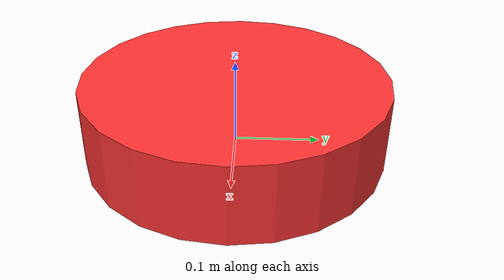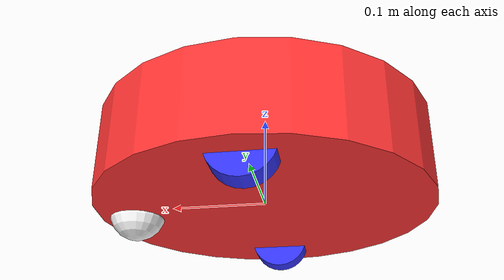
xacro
<?xml version="1.0"?>
<robot xmlns:xacro="http://www.ros.org/wiki/xacro"  name="robot">

    <xacro:arg name="use_ros2_control" default="true"/>
    <xacro:arg name="sim_mode" default="false"/>

    <xacro:include filename="robot_core.xacro" />

    <xacro:if value="$(arg use_ros2_control)">
        <xacro:include filename="ros2_control.xacro" />
    </xacro:if>
    <xacro:unless value="$(arg use_ros2_control)">
        <xacro:include filename="gazebo_control.xacro" />
    </xacro:unless>

</robot>

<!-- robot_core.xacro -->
<robot xmlns:xacro="http://www.ros.org/wiki/xacro" >
    <xacro:include filename="inertial_macros.xacro"/>

    <!-- Roomba-style robot properties -->
    <xacro:property name="chassis_radius" value="0.178"/> <!-- Approx 35.6cm diameter -->
    <xacro:property name="chassis_height" value="0.092"/>
    <xacro:property name="chassis_mass" value="3.5"/>
    <xacro:property name="wheel_radius" value="0.033"/>
    <xacro:property name="wheel_thickness" value="0.026"/>
    <xacro:property name="wheel_mass" value="0.05"/>
    <xacro:property name="wheel_offset_x" value="0.170"/> <!-- Adjusted for new chassis -->
    <xacro:property name="wheel_offset_y" value="0.135"/> <!-- Adjusted for new chassis -->
    <xacro:property name="wheel_offset_z" value="0.01"/>
    <xacro:property name="caster_wheel_radius" value="0.03"/>
    <xacro:property name="caster_wheel_mass" value="0.25"/>
    <xacro:property name="caster_wheel_offset_x" value="0.14"/> <!-- Adjusted for new chassis -->
    <xacro:property name="caster_wheel_offset_z" value="${wheel_offset_z - wheel_radius + caster_wheel_radius}"/>
    <material name="white">
        <color rgba="1 1 1 1" />
    </material>
    <material name="orange">
        <color rgba="1 0.3 0.1 1"/>
    </material>
    <material name="blue">
        <color rgba="0.2 0.2 1 1"/>
    </material>
    <material name="black">
        <color rgba="0 0 0 1"/>
    </material>
    <material name="grey">
        <color rgba="0.4 0.4 0.4 1"/>
    </material>
    <material name="red">
        <color rgba="1 0.2 0.2 1"/>
    </material>

    <!-- BASE LINK -->
    <link name="base_link">
    </link>

    <!-- BASE_FOOTPRINT LINK -->
    <joint name="base_footprint_joint" type="fixed">
        <parent link="base_link"/>
        <child link="base_footprint"/>
        <origin xyz="0 0 0" rpy="0 0 0"/>
    </joint>
    <link name="base_footprint">
    </link>

    <!-- CHASSIS LINK -->
    <joint name="chassis_joint" type="fixed">
        <parent link="base_link"/>
        <child link="chassis"/>
        <origin xyz="0 0 ${-wheel_offset_z}"/>
    </joint>
    <link name="chassis">
        <visual>
            <origin xyz="0 0 ${chassis_height/2}"/>
            <geometry>
                <cylinder radius="${chassis_radius}" length="${chassis_height}"/>
            </geometry>
            <material name="red"/>
        </visual>
        <collision>
            <origin xyz="0 0 ${chassis_height/2}"/>
            <geometry>
                <cylinder radius="${chassis_radius}" length="${chassis_height}"/>
            </geometry>
        </collision>
        <xacro:inertial_cylinder mass="${chassis_mass}" length="${chassis_height}" radius="${chassis_radius}">
            <origin xyz="0 0 ${chassis_height/2}" rpy="0 0 0"/>
        </xacro:inertial_cylinder>
    </link>
    <gazebo reference="chassis">
        <material>Gazebo/Red</material>
    </gazebo>
    <!-- LEFT WHEEL LINK -->
    <joint name="left_wheel_joint" type="continuous">
        <parent link="base_link"/>
        <child link="left_wheel"/>
        <origin xyz="0 ${wheel_offset_y} 0" rpy="-${pi/2} 0 0" />
        <axis xyz="0 0 1"/>
    </joint>
    <link name="left_wheel">
        <visual>
            <geometry>
                <cylinder radius="${wheel_radius}" length="${wheel_thickness}"/>
            </geometry>
            <material name="blue"/>
        </visual>
        <collision>
            <geometry>
                <cylinder radius="${wheel_radius}" length="${wheel_thickness}"/>
            </geometry>
        </collision>
        <xacro:inertial_cylinder mass="${wheel_mass}" length="${wheel_thickness}" radius="${wheel_radius}">
            <origin xyz="0 0 0" rpy="0 0 0"/>
        </xacro:inertial_cylinder>
    </link>
    <gazebo reference="left_wheel">
        <material>Gazebo/Blue</material>
    </gazebo>

    <!-- RIGHT WHEEL LINK -->
    <joint name="right_wheel_joint" type="continuous">
        <parent link="base_link"/>
        <child link="right_wheel"/>
        <origin xyz="0 ${-wheel_offset_y} 0" rpy="${pi/2} 0 0" />
        <axis xyz="0 0 -1"/>
    </joint>
    <link name="right_wheel">
        <visual>
            <geometry>
                <cylinder radius="${wheel_radius}" length="${wheel_thickness}"/>
            </geometry>
            <material name="blue"/>
        </visual>
        <collision>
            <geometry>
                <cylinder radius="${wheel_radius}" length="${wheel_thickness}"/>
            </geometry>
        </collision>
        <xacro:inertial_cylinder mass="${wheel_mass}" length="${wheel_thickness}" radius="${wheel_radius}">
            <origin xyz="0 0 0" rpy="0 0 0"/>
        </xacro:inertial_cylinder>
    </link>
    <gazebo reference="right_wheel">
        <material>Gazebo/Blue</material>
    </gazebo>

    <!-- CASTER WHEEL LINK -->
    <joint name="caster_wheel_joint" type="fixed">
        <parent link="chassis"/>
        <child link="caster_wheel"/>
        <origin xyz="${caster_wheel_offset_x} 0 ${caster_wheel_offset_z}"/>
    </joint>

    <link name="caster_wheel">
        <visual>
            <geometry>
                <sphere radius="${caster_wheel_radius}"/>
            </geometry>
            <material name="white"/>
        </visual>
        <collision>
            <geometry>
                <sphere radius="${caster_wheel_radius}"/>
            </geometry>
        </collision>
        <xacro:inertial_sphere mass="${caster_wheel_mass}" radius="${caster_wheel_radius}">
            <origin xyz="0 0 0" rpy="0 0 0"/>
        </xacro:inertial_sphere>
    </link>
    <gazebo reference="caster_wheel">
        <material>Gazebo/White</material>
        <mu1 value="0.001"/>
        <mu2 value="0.001"/>
    </gazebo>
</robot>
